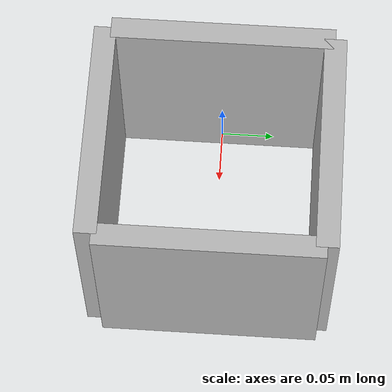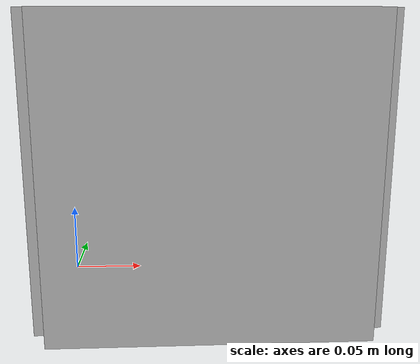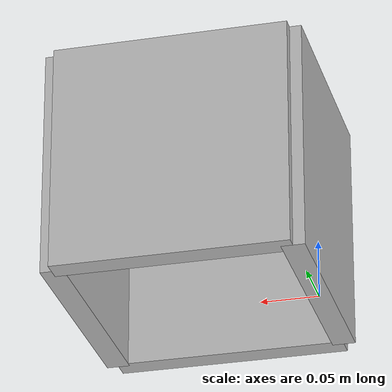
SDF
<?xml version='1.0'?>
<sdf version='1.6'>
  <model name='4linkage'>

    <link name="link1">
        <gravity>0</gravity>
        <visual name="link1">
            <geometry>
                <mesh>
                    <uri>model://4linkage/meshes/link1.dae</uri>
                    <scale>1 1 1</scale>
                </mesh>
            </geometry>
        </visual>
        <collision name='collision'>
            <geometry>
                <mesh>
                    <uri>model://4linkage/meshes/link1.dae</uri>
                    <scale>1 1 1</scale>
                </mesh>
            </geometry>
      </collision>
    </link>

    <joint name="12" type="revolute">
        <pose>0.2 0.1 0 0 0 0</pose>
        <parent>link1</parent>
        <child>link2</child>
        <axis>
            <xyz>0 0 1</xyz>

        </axis>
    </joint>

    <link name="link2">
        <gravity>0</gravity>
        <visual name="link2">
            <geometry>
                <mesh>
                    <uri>model://4linkage/meshes/link2.dae</uri>
                    <scale>1 1 1</scale>
                </mesh>
            </geometry>
        </visual>
        <collision name='collision'>
            <geometry>
                <mesh>
                    <uri>model://4linkage/meshes/link2.dae</uri>
                    <scale>1 1 1</scale>
                </mesh>
            </geometry>
      </collision>
    </link>

    <joint name="23" type="revolute">
        <pose>0.2 -0.1 0 0 0 0</pose>
        <parent>link2</parent>
        <child>link3</child>
        <axis>
            <xyz>0 0 1</xyz>

        </axis>
    </joint>

    <link name="link3">
        <gravity>0</gravity>
        <visual name="link3">
            <geometry>
                <mesh>
                    <uri>model://4linkage/meshes/link3.dae</uri>
                    <scale>1 1 1</scale>
                </mesh>
            </geometry>
        </visual>
        <collision name='collision'>
            <geometry>
                <mesh>
                    <uri>model://4linkage/meshes/link3.dae</uri>
                    <scale>1 1 1</scale>
                </mesh>
            </geometry>
        <surface>
            <friction>
                <ode>
                    <mu>0</mu>
                    <mu2>0</mu2>
                    <slip1>1.0</slip1>
                    <slip2>1.0</slip2>
                </ode>
            </friction>
        </surface>
      </collision>
    </link>

    <joint name="34" type="revolute">
        <pose>0 -0.1 0 0 0 0</pose>
        <parent>link3</parent>
        <child>link4</child>
        <axis>
            <xyz>0 0 1</xyz>

        </axis>
    </joint>

    <link name="link4">
        <gravity>0</gravity>
        <visual name="link4">
            <geometry>
                <mesh>
                    <uri>model://4linkage/meshes/link4.dae</uri>
                    <scale>1 1 1</scale>
                </mesh>
            </geometry>
        </visual>
        <collision name='collision'>
            <geometry>
                <mesh>
                    <uri>model://4linkage/meshes/link4.dae</uri>
                    <scale>1 1 1</scale>
                </mesh>
            </geometry>
      </collision>
    </link>

	<joint name="41" type="revolute">
        <pose>0 0.1 0 0 0 0</pose>
        <parent>link4</parent>
        <child>link1</child>
        <axis>
            <xyz>0 0 1</xyz>

        </axis>
    </joint>

  </model>
</sdf>
